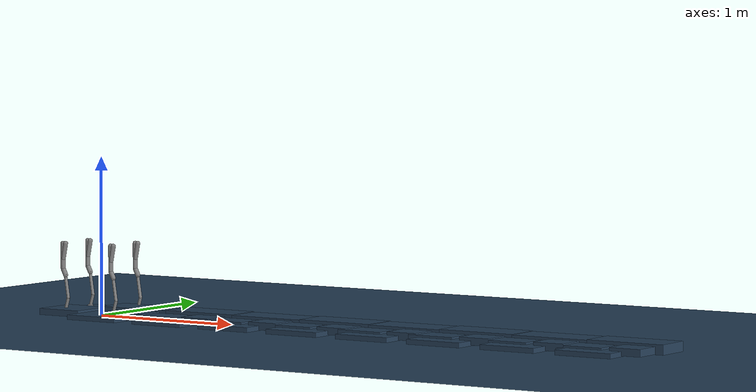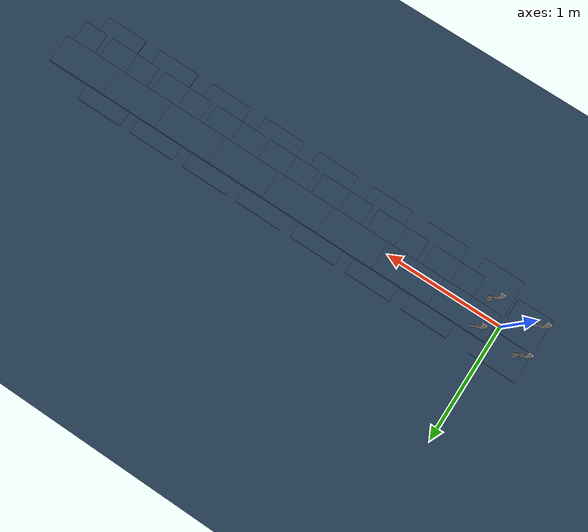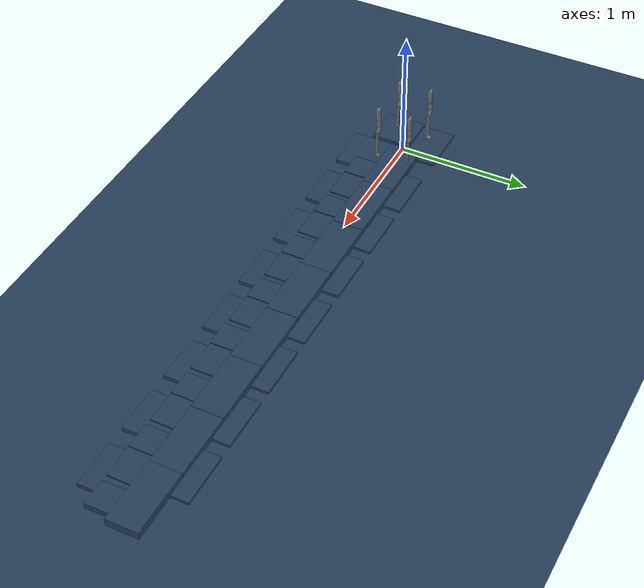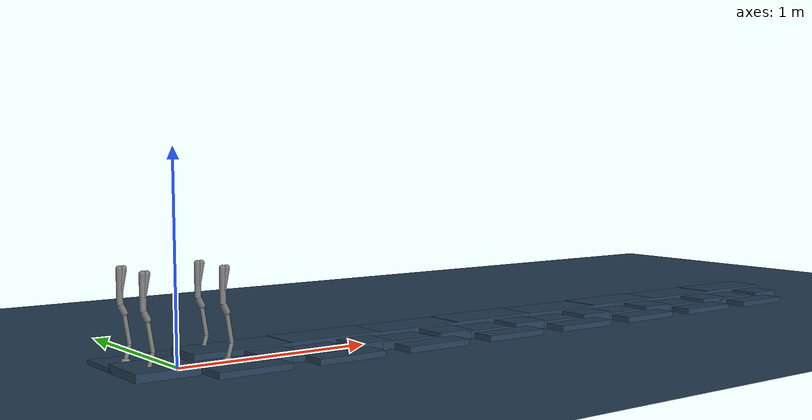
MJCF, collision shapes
<mujoco model="go1 scene">

  <include file="go1.xml"/>

  <statistic center="0 0 0.1" extent="0.8"/>

  <visual>
    <headlight diffuse="0.6 0.6 0.6" ambient="0.3 0.3 0.3" specular="0 0 0"/>
    <rgba haze="0.15 0.25 0.35 1"/>
    <global azimuth="120" elevation="-20"/>
  </visual>

  <asset>
    <texture type="skybox" builtin="gradient" rgb1="0.3 0.5 0.7" rgb2="0 0 0" width="512" height="3072"/>
    <texture type="2d" name="groundplane" builtin="checker" mark="edge" rgb1="0.2 0.3 0.4" rgb2="0.1 0.2 0.3"
      markrgb="0.8 0.8 0.8" width="300" height="300"/>
    <material name="groundplane" texture="groundplane" texuniform="true" texrepeat="5 5" reflectance="0.2"/>
  </asset>

  <worldbody>
    <light pos="0 0 1.5" dir="0 0 -1" directional="true"/>

    <!-- Original flat floor -->
    <geom name="floor" size="0 0 0.05" quat="0 0 0 1" type="plane"  material="groundplane"/>

    <!-- Uneven surfaces -->
    <geom name="uneven1" size="0.2 0.2 0.01" pos="-0.1 0.1 0.02" type="box" material="groundplane"/>
    <geom name="uneven2" size="0.15 0.15 0.02" pos="-0.15 -0.1 0.03" type="box" material="groundplane"/>
    <geom name="uneven3" size="0.18 0.18 0.015" pos="0.2 -0.2 0.023" type="box" material="groundplane"/>
    <geom name="uneven4" size="0.25 0.12 0.027" pos="0.3 0.05 0.04" type="box" material="groundplane"/>
    <geom name="uneven5" size="0.1 0.1 0.023" pos="0.4 -0.15 0.035" type="box" material="groundplane"/>
    <geom name="uneven6" size="0.2 0.2 0.01" pos="0.5 0.1 0.02" type="box" material="groundplane"/>
    <geom name="uneven7" size="0.15 0.15 0.02" pos="0.6 -0.1 0.03" type="box" material="groundplane"/>
    <geom name="uneven8" size="0.18 0.18 0.015" pos="0.7 -0.2 0.023" type="box" material="groundplane"/>
    <geom name="uneven9" size="0.25 0.12 0.03" pos="0.8 0.05 0.04" type="box" material="groundplane"/>
    <geom name="uneven10" size="0.1 0.1 0.022" pos="0.9 -0.15 0.035" type="box" material="groundplane"/>
    <geom name="uneven11" size="0.2 0.2 0.01" pos="1.0 0.1 0.02" type="box" material="groundplane"/>
    <geom name="uneven12" size="0.15 0.15 0.02" pos="1.1 -0.1 0.03" type="box" material="groundplane"/>
    <geom name="uneven13" size="0.18 0.18 0.015" pos="1.2 -0.2 0.023" type="box" material="groundplane"/>
    <geom name="uneven14" size="0.25 0.12 0.027" pos="1.3 0.05 0.04" type="box" material="groundplane"/>
    <geom name="uneven15" size="0.1 0.1 0.023" pos="1.4 -0.15 0.035" type="box" material="groundplane"/>
    <geom name="uneven16" size="0.2 0.2 0.01" pos="1.5 0.1 0.02" type="box" material="groundplane"/>
    <geom name="uneven17" size="0.15 0.15 0.02" pos="1.6 -0.1 0.03" type="box" material="groundplane"/>
    <geom name="uneven18" size="0.18 0.18 0.015" pos="1.7 -0.2 0.023" type="box" material="groundplane"/>
    <geom name="uneven19" size="0.25 0.12 0.03" pos="1.8 0.05 0.04" type="box" material="groundplane"/>
    <geom name="uneven20" size="0.1 0.1 0.022" pos="1.9 -0.15 0.035" type="box" material="groundplane"/>
    <geom name="uneven21" size="0.2 0.2 0.01" pos="2.0 0.1 0.02" type="box" material="groundplane"/>
    <geom name="uneven22" size="0.15 0.15 0.02" pos="2.1 -0.1 0.03" type="box" material="groundplane"/>
    <geom name="uneven23" size="0.18 0.18 0.015" pos="2.2 -0.2 0.023" type="box" material="groundplane"/>
    <geom name="uneven24" size="0.25 0.12 0.027" pos="2.3 0.05 0.04" type="box" material="groundplane"/>
    <geom name="uneven25" size="0.1 0.1 0.023" pos="2.4 -0.15 0.035" type="box" material="groundplane"/>
    <geom name="uneven26" size="0.2 0.2 0.01" pos="2.5 0.1 0.02" type="box" material="groundplane"/>
    <geom name="uneven27" size="0.15 0.15 0.02" pos="2.6 -0.1 0.03" type="box" material="groundplane"/>
    <geom name="uneven28" size="0.18 0.18 0.015" pos="2.7 -0.2 0.023" type="box" material="groundplane"/>
    <geom name="uneven29" size="0.25 0.12 0.03" pos="2.8 0.05 0.04" type="box" material="groundplane"/>
    <geom name="uneven30" size="0.1 0.1 0.022" pos="2.9 -0.15 0.035" type="box" material="groundplane"/>
    <geom name="uneven31" size="0.2 0.2 0.01" pos="3.0 0.1 0.02" type="box" material="groundplane"/>
    <geom name="uneven32" size="0.15 0.15 0.02" pos="3.1 -0.1 0.03" type="box" material="groundplane"/>
    <geom name="uneven33" size="0.18 0.18 0.015" pos="3.2 -0.2 0.023" type="box" material="groundplane"/>
    <geom name="uneven34" size="0.25 0.12 0.027" pos="3.3 0.05 0.04" type="box" material="groundplane"/>
    <geom name="uneven35" size="0.1 0.1 0.023" pos="3.4 -0.15 0.035" type="box" material="groundplane"/>
    <geom name="uneven36" size="0.2 0.2 0.01" pos="3.5 0.1 0.02" type="box" material="groundplane"/>
    <geom name="uneven37" size="0.15 0.15 0.02" pos="3.6 -0.1 0.03" type="box" material="groundplane"/>
    <geom name="uneven38" size="0.18 0.18 0.015" pos="3.7 -0.2 0.023" type="box" material="groundplane"/>
    <geom name="uneven39" size="0.25 0.12 0.03" pos="3.8 0.05 0.04" type="box" material="groundplane"/>
    <geom name="uneven40" size="0.1 0.1 0.022" pos="3.9 -0.15 0.035" type="box" material="groundplane"/>
  </worldbody>

</mujoco>

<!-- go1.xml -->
<mujoco model="go1">
  <compiler angle="radian" meshdir="assets" autolimits="true"/>

  <option collision="predefined" timestep="0.001"/>
  <contact>
    <pair geom1="FR" geom2="floor" solimp="0.99 0.99 0.0001" solref="0.0001 1" />
    <pair geom1="FL" geom2="floor" solimp="0.99 0.99 0.0001" solref="0.0001 1" />
    <pair geom1="RR" geom2="floor" solimp="0.99 0.99 0.0001" solref="0.0001 1" />
    <pair geom1="RL" geom2="floor" solimp="0.99 0.99 0.0001" solref="0.0001 1" />
  </contact>

  <default>
    <default class="go1">
      <geom friction="0.6" margin="0.001" condim="3"/>
      <joint axis="0 1 0" damping="2" armature="0.01" frictionloss="0.2"/>
      <position kp="100" forcerange="-23.7 23.7"/>
      <default class="abduction">
        <joint axis="1 0 0" damping="1" range="-0.863 0.863"/>
        <position ctrlrange="-0.863 0.863"/>
      </default>
      <default class="hip">
        <joint range="-0.686 4.501"/>
        <position ctrlrange="-0.686 4.501"/>
      </default>
      <default class="knee">
        <joint range="-2.818 -0.888"/>
        <position forcerange="-35.55 35.55" ctrlrange="-2.818 -0.888"/>
      </default>
      <default class="visual">
        <geom type="mesh" contype="0" conaffinity="0" group="2" material="dark"/>
      </default>
      <default class="collision">
        <geom group="3" type="capsule"/>
        <default class="hip_left1">
          <geom size="0.046 0.02" pos="0 0.045 0" quat="1 1 0 0" type="cylinder"/>
        </default>
        <default class="hip_left2">
          <geom size="0.031 0.02" pos="0 0.065 0" quat="1 1 0 0" type="cylinder"/>
        </default>
        <default class="hip_left3">
          <geom size="0.046 0.02" quat="1 1 0 0" type="cylinder"/>
        </default>
        <default class="hip_right1">
          <geom size="0.046 0.02" pos="0 -0.045 0" quat="1 1 0 0" type="cylinder"/>
        </default>
        <default class="hip_right2">
          <geom size="0.031 0.02" pos="0 -0.065 0" quat="1 1 0 0" type="cylinder"/>
        </default>
        <default class="hip_right3">
          <geom size="0.046 0.02" quat="1 1 0 0" type="cylinder"/>
        </default>
        <default class="thigh1">
          <geom size="0.015" fromto="-0.02 0 0 -0.02 0 -0.16"/>
        </default>
        <default class="thigh2">
          <geom size="0.015" fromto="0 0 0 -0.02 0 -0.1"/>
        </default>
        <default class="thigh3">
          <geom size="0.015" fromto="-0.02 0 -0.16 0 0 -0.2"/>
        </default>
        <default class="calf1">
          <geom size="0.01" fromto="0 0 0 0.02 0 -0.13"/>
        </default>
        <default class="calf2">
          <geom size="0.01" fromto="0.02 0 -0.13 0 0 -0.2"/>
        </default>
        <default class="foot">
          <geom type="sphere" size="0.023" pos="0 0 -0.213" priority="1" solimp="0.015 1 0.031" condim="3"
            friction="0.8 0.02 0.01"/>
        </default>
      </default>
    </default>
  </default>

  <asset>
    <material name="dark" rgba="0.1 0.1 0.1 1"/>
    <mesh class="go1" file="trunk.stl"/>
    <mesh class="go1" file="hip.stl"/>
    <mesh class="go1" file="thigh_mirror.stl"/>
    <mesh class="go1" file="calf.stl"/>
    <mesh class="go1" file="thigh.stl"/>
  </asset>

  <worldbody>
    <light name="spotlight" mode="targetbodycom" target="trunk" pos="0 -1 2"/>
    <body name="trunk" pos="0 0 0.455" childclass="go1">
      <camera name="tracking" mode="trackcom" pos="0 -1 0.8" xyaxes="1 0 0 0 1 1"/>
      <site name="head" pos="0.3 0 0" rgba="1 0 0 1" size="0.02" group="5"/>
      <inertial pos="0.0223 0.002 -0.0005" quat="-0.00342088 0.705204 0.000106698 0.708996" mass="5.204"
        diaginertia="0.0716565 0.0630105 0.0168101"/>
      <freejoint/>
      <geom class="visual" mesh="trunk"/>
      <site name="imu" pos="0 0 0"/>
      <body name="FR_hip" pos="0.1881 -0.04675 0">
        <inertial pos="-0.0049166 0.00762615 -8.865e-05" quat="0.507341 0.514169 0.495027 0.482891" mass="0.68"
          diaginertia="0.000734064 0.000468438 0.000398719"/>
        <joint class="abduction" name="FR_hip_joint"/>
        <geom class="visual" mesh="hip" quat="1 0 0 0"/>
        <body name="FR_thigh" pos="0 -0.08 0">
          <inertial pos="-0.00304722 0.019315 -0.0305004" quat="0.65243 -0.0272313 0.0775126 0.753383" mass="1.009"
            diaginertia="0.00478717 0.00460903 0.000709268"/>
          <joint class="hip" name="FR_thigh_joint"/>
          <geom class="visual" mesh="thigh_mirror"/>
          <geom class="thigh1"/>
          <geom class="thigh2"/>
          <geom class="thigh3"/>
          <body name="FR_calf" pos="0 0 -0.213">
            <inertial pos="0.00429862 0.000976676 -0.146197" quat="0.691246 0.00357467 0.00511118 0.722592"
              mass="0.195862" diaginertia="0.00149767 0.00148468 3.58427e-05"/>
            <joint class="knee" name="FR_calf_joint"/>
            <geom class="visual" mesh="calf"/>
            <geom class="calf1"/>
            <geom name="FR_calf2" class="calf2"/>
            <geom name="FR" class="foot" />
            <site name="FR" pos="0 0 -0.213" type="sphere" size="0.023" group="5"/>
          </body>
        </body>
      </body>
      <body name="FL_hip" pos="0.1881 0.04675 0">
        <inertial pos="-0.0049166 -0.00762615 -8.865e-05" quat="0.482891 0.495027 0.514169 0.507341" mass="0.68"
          diaginertia="0.000734064 0.000468438 0.000398719"/>
        <joint class="abduction" name="FL_hip_joint"/>
        <geom class="visual" mesh="hip"/>
        <body name="FL_thigh" pos="0 0.08 0">
          <inertial pos="-0.00304722 -0.019315 -0.0305004" quat="0.753383 0.0775126 -0.0272313 0.65243" mass="1.009"
            diaginertia="0.00478717 0.00460903 0.000709268"/>
          <joint class="hip" name="FL_thigh_joint"/>
          <geom class="visual" mesh="thigh"/>
          <geom class="thigh1"/>
          <geom class="thigh2"/>
          <geom class="thigh3"/>
          <body name="FL_calf" pos="0 0 -0.213">
            <inertial pos="0.00429862 0.000976676 -0.146197" quat="0.691246 0.00357467 0.00511118 0.722592"
              mass="0.195862" diaginertia="0.00149767 0.00148468 3.58427e-05"/>
            <joint class="knee" name="FL_calf_joint"/>
            <geom class="visual" mesh="calf"/>
            <geom class="calf1"/>
            <geom name="FL_calf2" class="calf2"/>
            <geom name="FL" class="foot" friction="1.0 0.6 0.6"/>
            <site name="FL" pos="0 0 -0.213" type="sphere" size="0.023" group="5"/>
          </body>
        </body>
      </body>
      <body name="RR_hip" pos="-0.1881 -0.04675 0">
        <inertial pos="0.0049166 0.00762615 -8.865e-05" quat="0.495027 0.482891 0.507341 0.514169" mass="0.68"
          diaginertia="0.000734064 0.000468438 0.000398719"/>
        <joint class="abduction" name="RR_hip_joint"/>
        <geom class="visual" quat="0 0 0 -1" mesh="hip"/>
        <body name="RR_thigh" pos="0 -0.08 0">
          <inertial pos="-0.00304722 0.019315 -0.0305004" quat="0.65243 -0.0272313 0.0775126 0.753383" mass="1.009"
            diaginertia="0.00478717 0.00460903 0.000709268"/>
          <joint class="hip" name="RR_thigh_joint"/>
          <geom class="visual" mesh="thigh_mirror"/>
          <geom class="thigh1"/>
          <geom class="thigh2"/>
          <geom class="thigh3"/>
          <body name="RR_calf" pos="0 0 -0.213">
            <inertial pos="0.00429862 0.000976676 -0.146197" quat="0.691246 0.00357467 0.00511118 0.722592"
              mass="0.195862" diaginertia="0.00149767 0.00148468 3.58427e-05"/>
            <joint class="knee" name="RR_calf_joint"/>
            <geom class="visual" mesh="calf"/>
            <geom class="calf1"/>
            <geom name="RR_calf2" class="calf2"/>
            <geom name="RR" class="foot" />
            <site name="RR" pos="0 0 -0.213" type="sphere" size="0.023" group="5"/>
          </body>
        </body>
      </body>
      <body name="RL_hip" pos="-0.1881 0.04675 0">
        <inertial pos="0.0049166 -0.00762615 -8.865e-05" quat="0.514169 0.507341 0.482891 0.495027" mass="0.68"
          diaginertia="0.000734064 0.000468438 0.000398719"/>
        <joint class="abduction" name="RL_hip_joint"/>
        <geom class="visual" quat="0 0 1 0" mesh="hip"/>
        <body name="RL_thigh" pos="0 0.08 0">
          <inertial pos="-0.00304722 -0.019315 -0.0305004" quat="0.753383 0.0775126 -0.0272313 0.65243" mass="1.009"
            diaginertia="0.00478717 0.00460903 0.000709268"/>
          <joint class="hip" name="RL_thigh_joint"/>
          <geom class="visual" mesh="thigh"/>
          <geom class="thigh1"/>
          <geom class="thigh2"/>
          <geom class="thigh3"/>
          <body name="RL_calf" pos="0 0 -0.213">
            <inertial pos="0.00429862 0.000976676 -0.146197" quat="0.691246 0.00357467 0.00511118 0.722592"
              mass="0.195862" diaginertia="0.00149767 0.00148468 3.58427e-05"/>
            <joint class="knee" name="RL_calf_joint"/>
            <geom class="visual" mesh="calf"/>
            <geom class="calf1"/>
            <geom name="RL_calf2" class="calf2"/>
            <geom name="RL" class="foot"/>
            <site name="RL" pos="0 0 -0.213" type="sphere" size="0.023" group="5"/>
          </body>
        </body>
      </body>
    </body>
  </worldbody>

  <actuator>
    <position class="abduction" name="FR_hip" joint="FR_hip_joint"/>
    <position class="hip" name="FR_thigh" joint="FR_thigh_joint"/>
    <position class="knee" name="FR_calf" joint="FR_calf_joint"/>
    <position class="abduction" name="FL_hip" joint="FL_hip_joint"/>
    <position class="hip" name="FL_thigh" joint="FL_thigh_joint"/>
    <position class="knee" name="FL_calf" joint="FL_calf_joint"/>
    <position class="abduction" name="RR_hip" joint="RR_hip_joint"/>
    <position class="hip" name="RR_thigh" joint="RR_thigh_joint"/>
    <position class="knee" name="RR_calf" joint="RR_calf_joint"/>
    <position class="abduction" name="RL_hip" joint="RL_hip_joint"/>
    <position class="hip" name="RL_thigh" joint="RL_thigh_joint"/>
    <position class="knee" name="RL_calf" joint="RL_calf_joint"/>
  </actuator>

  <keyframe>
    <key name="home" qpos="0 0 0.34 1 0 0 0 0 0 -1.0 0 0 -1.0 0 0 -1.0 0 0 -1.0"
      ctrl="0 0 -1.0 0 0 -1.0 0 0 -1.0 0 0 -1.0"/>
  </keyframe>

</mujoco>
